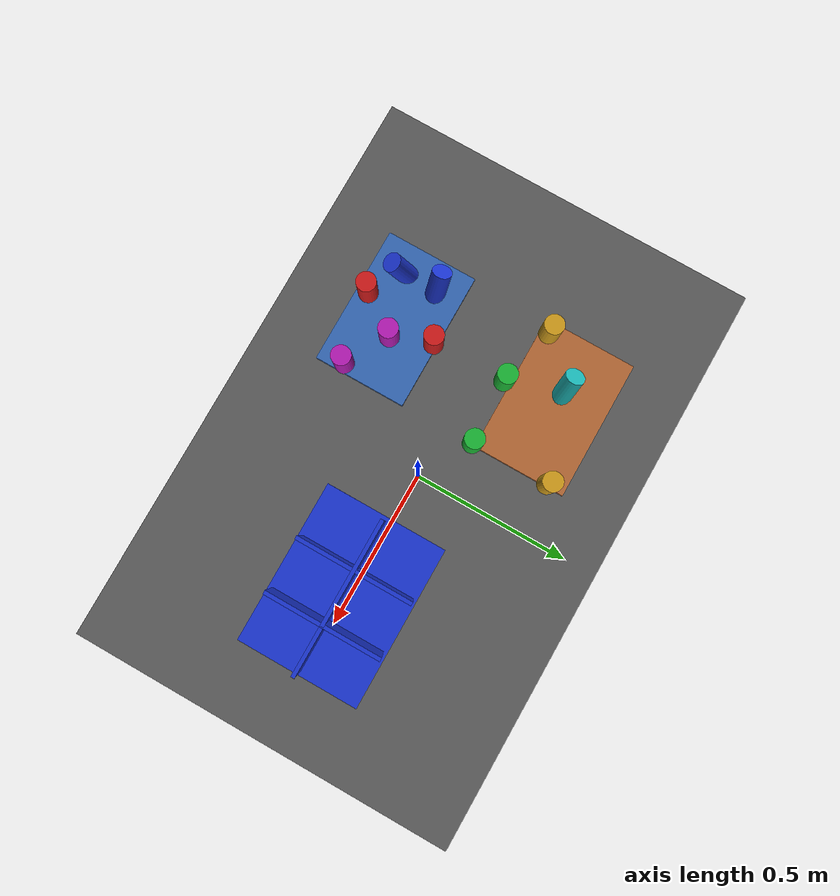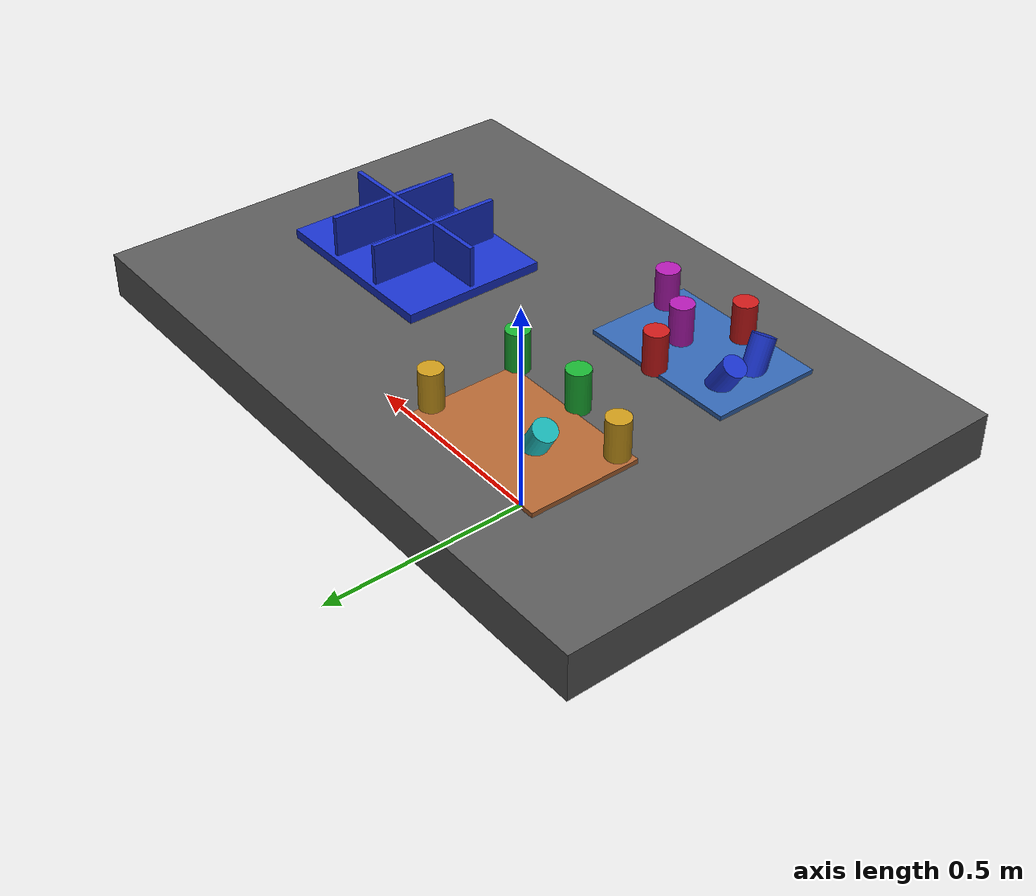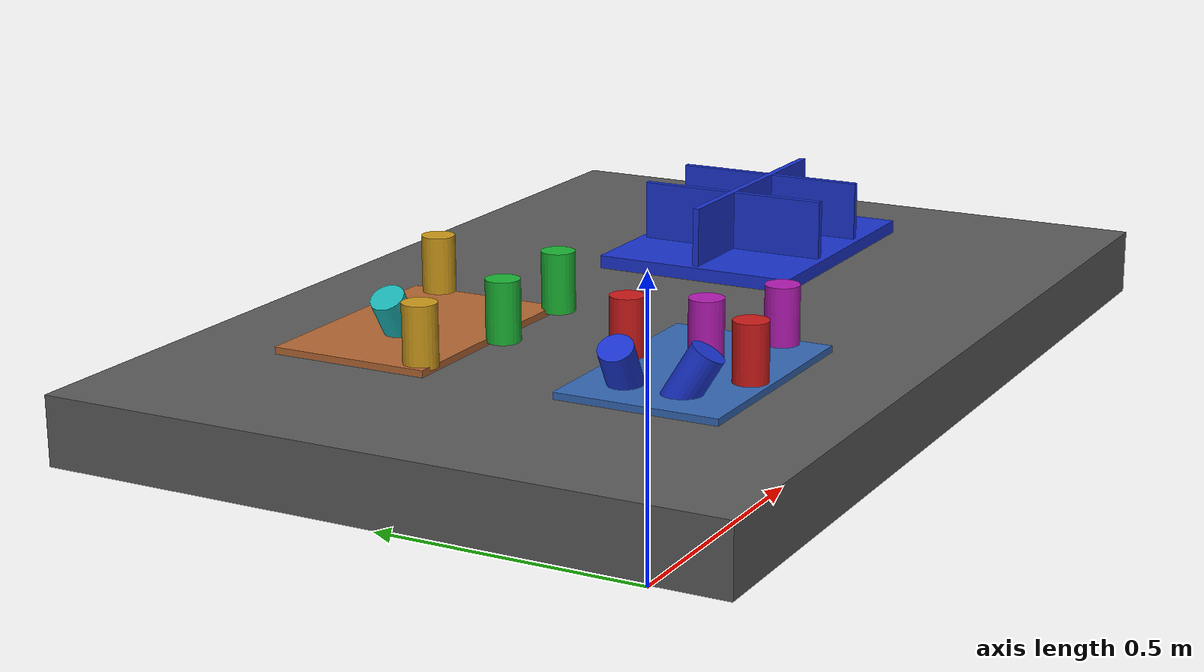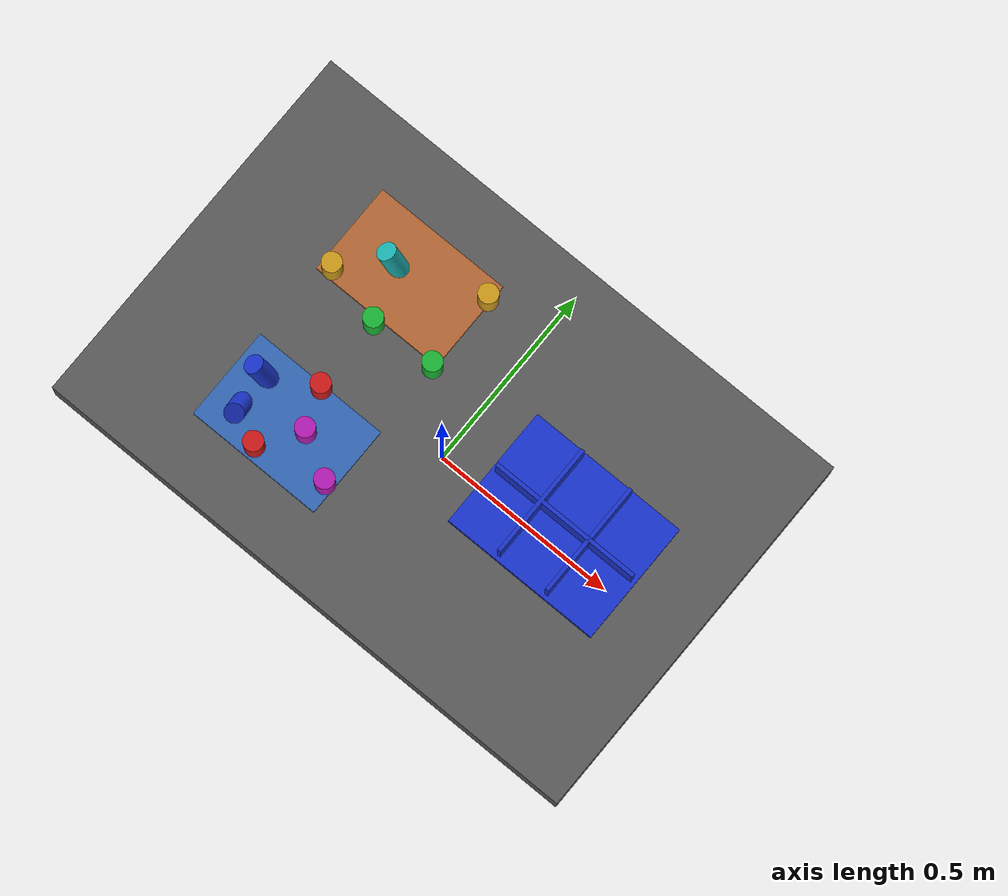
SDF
<?xml version="1.0" ?>
<sdf version="1.9">
  <!-- Standalone M1B scene.  The controller-backed Panda is spawned by the
       existing launch path; this file never alters the frozen M1A cube world. -->
  <world name="industrial_cylinder_v1">
    <physics name="bullet" type="bullet"><max_step_size>0.001</max_step_size><real_time_factor>1.0</real_time_factor></physics>
    <plugin name="gz::sim::systems::Physics" filename="gz-sim-physics-system"><engine><filename>gz-physics-bullet-featherstone-plugin</filename></engine></plugin>
    <plugin name="gz::sim::systems::UserCommands" filename="gz-sim-user-commands-system"/>
    <plugin name="gz::sim::systems::SceneBroadcaster" filename="gz-sim-scene-broadcaster-system"/>
    <plugin name="gz::sim::systems::Sensors" filename="gz-sim-sensors-system"><render_engine>ogre2</render_engine></plugin>
    <gravity>0 0 -9.81</gravity>
    <light type="directional" name="industrial_light"><pose>0 0 5 0 0 0</pose><direction>-0.3 0.2 -0.9</direction><diffuse>0.9 0.9 0.9 1</diffuse></light>
    <model name="industrial_work_table"><static>true</static><link name="link"><pose>0 0 0.4 0 0 0</pose><collision name="collision"><geometry><box><size>1.5 1.0 0.1</size></box></geometry></collision><visual name="visual"><geometry><box><size>1.5 1.0 0.1</size></box></geometry><material><diffuse>0.35 0.35 0.35 1</diffuse></material></visual></link></model>
    <model name="camera_fixture"><static>true</static><link name="camera_rgbd"><pose>-0.80 -0.80 1.40 0 0.77 0.93</pose><sensor name="front_rgbd" type="rgbd_camera"><always_on>1</always_on><update_rate>15</update_rate><topic>/xh/camera/rgbd</topic><camera><horizontal_fov>1.047</horizontal_fov><image><width>640</width><height>480</height><format>R8G8B8</format></image><clip><near>0.1</near><far>4.0</far></clip></camera></sensor></link></model>
    <model name="incoming_zone_a"><static>true</static><link name="link"><pose>-0.28 -0.22 0.455 0 0 0</pose><visual name="visual"><geometry><box><size>0.36 0.24 0.01</size></box></geometry><material><diffuse>0.2 0.4 0.7 1</diffuse></material></visual></link></model>
    <model name="incoming_zone_b"><static>true</static><link name="link"><pose>-0.28 0.22 0.455 0 0 0</pose><visual name="visual"><geometry><box><size>0.36 0.24 0.01</size></box></geometry><material><diffuse>0.7 0.4 0.2 1</diffuse></material></visual></link></model>
    <!-- M1B_RANDOM_PARTS_BEGIN -->
    <model name="cylinder_01"><pose>-0.2692 -0.1093 0.5000 0.0000 0.0000 0.7715</pose><link name="link"><inertial><mass>0.06</mass></inertial><collision name="collision"><geometry><cylinder><radius>0.025</radius><length>0.09</length></cylinder></geometry></collision><visual name="visual"><geometry><cylinder><radius>0.025</radius><length>0.09</length></cylinder></geometry><material><diffuse>0.800 0.100 0.100 1</diffuse><specular>0.15 0.15 0.15 1</specular></material></visual></link></model>
    <model name="cylinder_02"><pose>-0.1048 0.0911 0.5000 3.1416 0.0000 -1.1436</pose><link name="link"><inertial><mass>0.06</mass></inertial><collision name="collision"><geometry><cylinder><radius>0.025</radius><length>0.09</length></cylinder></geometry></collision><visual name="visual"><geometry><cylinder><radius>0.025</radius><length>0.09</length></cylinder></geometry><material><diffuse>0.100 0.700 0.200 1</diffuse><specular>0.15 0.15 0.15 1</specular></material></visual></link></model>
    <model name="cylinder_03"><pose>-0.3859 -0.2642 0.4800 0.4500 -0.3000 0.8451</pose><link name="link"><inertial><mass>0.06</mass></inertial><collision name="collision"><geometry><cylinder><radius>0.025</radius><length>0.09</length></cylinder></geometry></collision><visual name="visual"><geometry><cylinder><radius>0.025</radius><length>0.09</length></cylinder></geometry><material><diffuse>0.100 0.200 0.800 1</diffuse><specular>0.15 0.15 0.15 1</specular></material></visual></link></model>
    <model name="cylinder_04"><pose>-0.1067 0.2940 0.5000 0.0000 0.0000 -2.2788</pose><link name="link"><inertial><mass>0.06</mass></inertial><collision name="collision"><geometry><cylinder><radius>0.025</radius><length>0.09</length></cylinder></geometry></collision><visual name="visual"><geometry><cylinder><radius>0.025</radius><length>0.09</length></cylinder></geometry><material><diffuse>0.800 0.600 0.100 1</diffuse><specular>0.15 0.15 0.15 1</specular></material></visual></link></model>
    <model name="cylinder_05"><pose>-0.2312 -0.2104 0.5000 3.1416 0.0000 1.1753</pose><link name="link"><inertial><mass>0.06</mass></inertial><collision name="collision"><geometry><cylinder><radius>0.025</radius><length>0.09</length></cylinder></geometry></collision><visual name="visual"><geometry><cylinder><radius>0.025</radius><length>0.09</length></cylinder></geometry><material><diffuse>0.700 0.100 0.700 1</diffuse><specular>0.15 0.15 0.15 1</specular></material></visual></link></model>
    <model name="cylinder_06"><pose>-0.3295 0.2230 0.4800 0.4500 -0.3000 -1.0782</pose><link name="link"><inertial><mass>0.06</mass></inertial><collision name="collision"><geometry><cylinder><radius>0.025</radius><length>0.09</length></cylinder></geometry></collision><visual name="visual"><geometry><cylinder><radius>0.025</radius><length>0.09</length></cylinder></geometry><material><diffuse>0.100 0.700 0.700 1</diffuse><specular>0.15 0.15 0.15 1</specular></material></visual></link></model>
    <model name="cylinder_07"><pose>-0.3014 -0.3099 0.5000 0.0000 0.0000 -2.2049</pose><link name="link"><inertial><mass>0.06</mass></inertial><collision name="collision"><geometry><cylinder><radius>0.025</radius><length>0.09</length></cylinder></geometry></collision><visual name="visual"><geometry><cylinder><radius>0.025</radius><length>0.09</length></cylinder></geometry><material><diffuse>0.800 0.100 0.100 1</diffuse><specular>0.15 0.15 0.15 1</specular></material></visual></link></model>
    <model name="cylinder_08"><pose>-0.2741 0.0837 0.5000 3.1416 0.0000 -0.4963</pose><link name="link"><inertial><mass>0.06</mass></inertial><collision name="collision"><geometry><cylinder><radius>0.025</radius><length>0.09</length></cylinder></geometry></collision><visual name="visual"><geometry><cylinder><radius>0.025</radius><length>0.09</length></cylinder></geometry><material><diffuse>0.100 0.700 0.200 1</diffuse><specular>0.15 0.15 0.15 1</specular></material></visual></link></model>
    <model name="cylinder_09"><pose>-0.3957 -0.1688 0.4800 0.4500 -0.3000 -0.9379</pose><link name="link"><inertial><mass>0.06</mass></inertial><collision name="collision"><geometry><cylinder><radius>0.025</radius><length>0.09</length></cylinder></geometry></collision><visual name="visual"><geometry><cylinder><radius>0.025</radius><length>0.09</length></cylinder></geometry><material><diffuse>0.100 0.200 0.800 1</diffuse><specular>0.15 0.15 0.15 1</specular></material></visual></link></model>
    <model name="cylinder_10"><pose>-0.4291 0.1218 0.5000 0.0000 0.0000 -0.8435</pose><link name="link"><inertial><mass>0.06</mass></inertial><collision name="collision"><geometry><cylinder><radius>0.025</radius><length>0.09</length></cylinder></geometry></collision><visual name="visual"><geometry><cylinder><radius>0.025</radius><length>0.09</length></cylinder></geometry><material><diffuse>0.800 0.600 0.100 1</diffuse><specular>0.15 0.15 0.15 1</specular></material></visual></link></model>
    <model name="cylinder_11"><pose>-0.1214 -0.2733 0.5000 3.1416 0.0000 1.3480</pose><link name="link"><inertial><mass>0.06</mass></inertial><collision name="collision"><geometry><cylinder><radius>0.025</radius><length>0.09</length></cylinder></geometry></collision><visual name="visual"><geometry><cylinder><radius>0.025</radius><length>0.09</length></cylinder></geometry><material><diffuse>0.700 0.100 0.700 1</diffuse><specular>0.15 0.15 0.15 1</specular></material></visual></link></model>
    <!-- M1B_RANDOM_PARTS_END -->
    <model name="blue_partition_bin"><static>true</static><pose>0.36 0 0.45 0 0 0</pose><link name="link"><collision name="floor"><pose>0 0 0.01 0 0 0</pose><geometry><box><size>0.42 0.32 0.02</size></box></geometry></collision><visual name="floor_visual"><pose>0 0 0.01 0 0 0</pose><geometry><box><size>0.42 0.32 0.02</size></box></geometry><material><diffuse>0.1 0.2 0.8 1</diffuse></material></visual><visual name="row_divider"><pose>0 0 0.06 0 0 0</pose><geometry><box><size>0.40 0.01 0.10</size></box></geometry><material><diffuse>0.1 0.2 0.8 1</diffuse></material></visual><visual name="col_divider_a"><pose>-0.07 0 0.06 0 0 0</pose><geometry><box><size>0.01 0.30 0.10</size></box></geometry><material><diffuse>0.1 0.2 0.8 1</diffuse></material></visual><visual name="col_divider_b"><pose>0.07 0 0.06 0 0 0</pose><geometry><box><size>0.01 0.30 0.10</size></box></geometry><material><diffuse>0.1 0.2 0.8 1</diffuse></material></visual></link></model>
    <!-- Reserved only: second table, bin transport corridor, stackable-bin
         collision volume, and second arm mounting namespace. -->
  </world>
</sdf>
